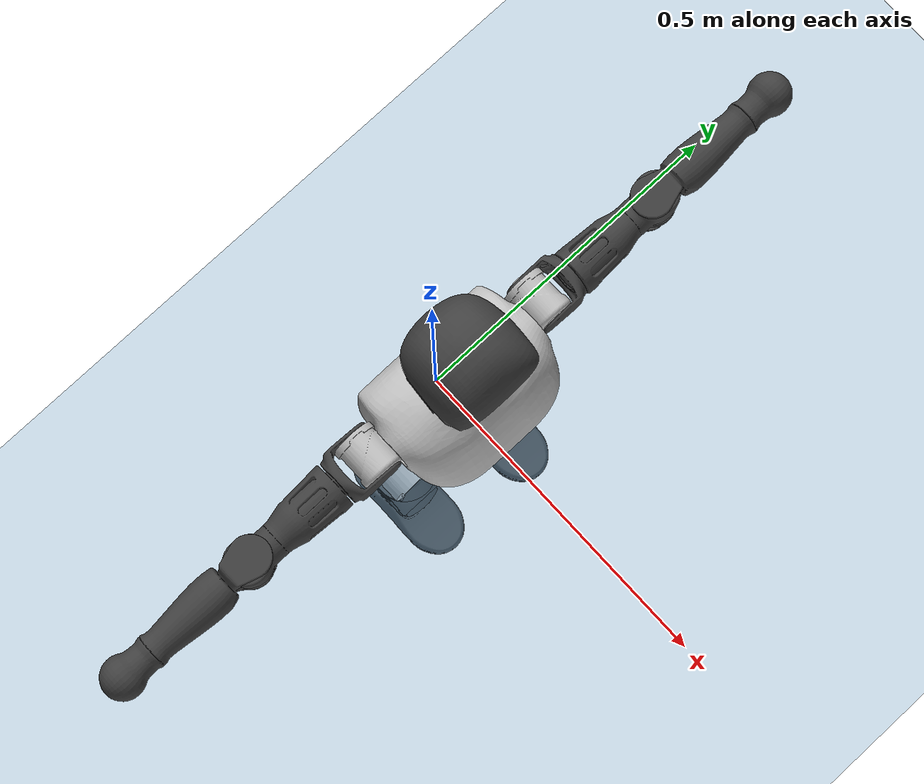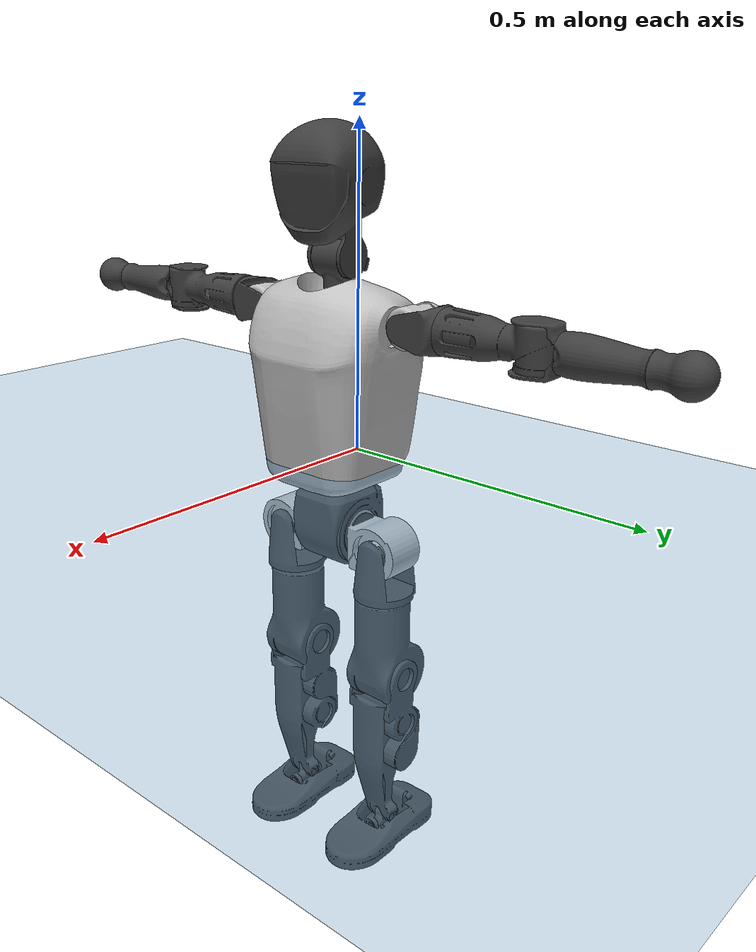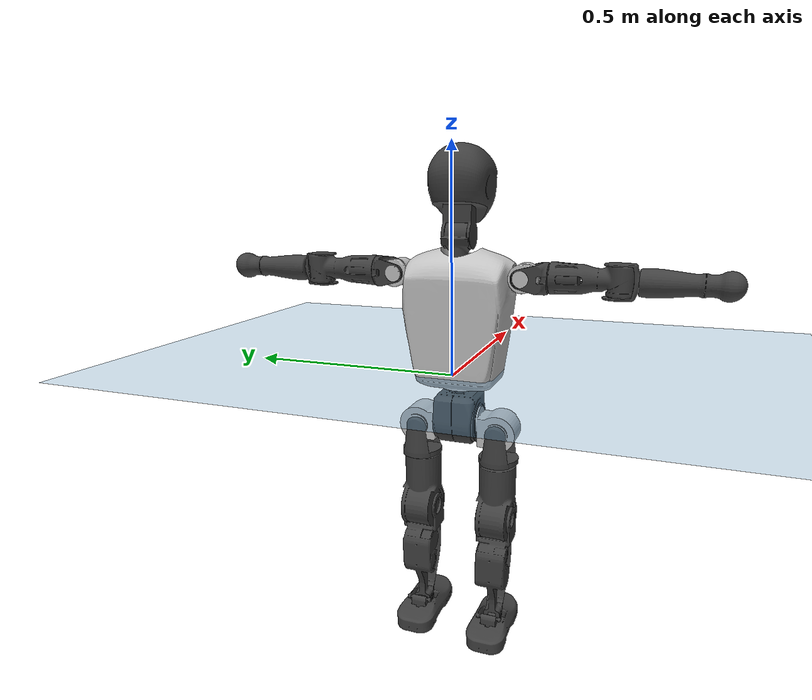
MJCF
<mujoco model="T1">
  <compiler angle="radian" assetdir="assets" balanceinertia="true" inertiafromgeom="false"/>

  <option timestep="0.005" density="1.2" viscosity="2e-05"/>

  <size nkey="1"/>

  <visual>
    <quality shadowsize="8192"/>
    <map shadowclip="0.5"/>
  </visual>

  <default>
    <default class="/">
      <joint armature="0.01" damping="0.01" frictionloss="0.1"/>
      <geom contype="0" conaffinity="0" group="1" solref="-1000 -80"/>
      <site size="0.01 0.005 0.005" group="5"/>
      <general forcelimited="true" biastype="affine" gainprm="25" biasprm="0 -25 -0.6"/>
      <default class="t1">
        <geom rgba="0.25 0.25 0.25 1"/>
        <default class="visual">
          <geom type="mesh" group="2"/>
        </default>
        <default class="collision">
          <geom group="3"/>
        </default>
        <default class="foot">
          <geom size="0.1115 0.05 0.015" type="box" condim="6" group="4" priority="1" solimp="0.015 1 0.015"/>
        </default>
        <default class="reward_collision_sphere">
          <geom group="5" rgba="1 0 0 1"/>
        </default>
      </default>
    </default>
  </default>

  <asset>
    <texture type="skybox" colorspace="auto" name="//unnamed_texture_0" builtin="gradient" rgb1="0.95 0.95 0.95" rgb2="0.95 0.95 0.95" width="100" height="600"/>
    <texture type="2d" colorspace="auto" name="texplane" builtin="checker" rgb1="0.345 0.575 0.748" rgb2="0.345 0.575 0.748" markrgb="1 1 1" width="512" height="512"/>
    <material name="MatPlane" class="/" texture="texplane" texuniform="true" texrepeat="2 2" specular="0.9"/>
    <mesh name="Trunk" class="/" file="Trunk.stl"/>
    <mesh name="H1" class="/" file="H1.stl"/>
    <mesh name="H2" class="/" file="H2.stl"/>
    <mesh name="AL1" class="/" file="AL1.stl"/>
    <mesh name="AL2" class="/" file="AL2.stl"/>
    <mesh name="AL3" class="/" file="AL3.stl"/>
    <mesh name="left_hand_link" class="/" file="left_hand_link.stl"/>
    <mesh name="AR1" class="/" file="AR1.stl"/>
    <mesh name="AR2" class="/" file="AR2.stl"/>
    <mesh name="AR3" class="/" file="AR3.stl"/>
    <mesh name="right_hand_link" class="/" file="right_hand_link.stl"/>
    <mesh name="Waist" class="/" file="Waist.stl"/>
    <mesh name="Hip_Pitch_Left" class="/" file="Hip_Pitch_Left.stl"/>
    <mesh name="Hip_Roll_Left" class="/" file="Hip_Roll_Left.stl"/>
    <mesh name="Hip_Yaw_Left" class="/" file="Hip_Yaw_Left.stl"/>
    <mesh name="Shank_Left" class="/" file="Shank_Left.stl"/>
    <mesh name="Ankle_Cross_Left" class="/" file="Ankle_Cross_Left.stl"/>
    <mesh name="left_foot_link" class="/" file="left_foot_link.stl"/>
    <mesh name="Hip_Pitch_Right" class="/" file="Hip_Pitch_Right.stl"/>
    <mesh name="Hip_Roll_Right" class="/" file="Hip_Roll_Right.stl"/>
    <mesh name="Hip_Yaw_Right" class="/" file="Hip_Yaw_Right.stl"/>
    <mesh name="Shank_Right" class="/" file="Shank_Right.stl"/>
    <mesh name="Ankle_Cross_Right" class="/" file="Ankle_Cross_Right.stl"/>
    <mesh name="right_foot_link" class="/" file="right_foot_link.stl"/>
  </asset>

  <worldbody>
    <geom name="floor" class="/" size="100 100 0.125" type="plane" group="0" material="MatPlane"/>
    <light name="toplight_shadow" class="/" pos="0 0 5" dir="0.0990148 0.0990148 -0.990148" type="directional" ambient="0.04 0.04 0.04" diffuse="0.55 0.55 0.55" specular="0.12 0.12 0.12"/>
    <light name="toplight_fill" class="/" pos="0 0 5" dir="0.0990148 0.0990148 -0.990148" type="directional" castshadow="false" ambient="0.04 0.04 0.04" diffuse="0.3 0.3 0.3" specular="0.08 0.08 0.08"/>
    <body name="trunk" childclass="t1" pos="0.000271477 -0.00249501 0.00199431" quat="0.999999 0.000993355 0.000792399 0.000196208">
      <inertial pos="0.0376744 -0.0016991 0.106001" quat="0.999953 0.00147114 -0.0096244 -0.000203405" mass="8.0161" diaginertia="0.0155271 0.0558737 0.0624795"/>
      <joint name="//unnamed_joint_0" type="free" armature="0" damping="0" frictionloss="0"/>
      <geom name="//unnamed_geom_1" class="visual" rgba="0.76 0.76 0.76 1" mesh="Trunk"/>
      <geom name="//unnamed_geom_2" class="collision" size="0.0661152 0.0881536 0.13223" pos="0.0418396 0 0.121227" type="box"/>
      <geom name="//unnamed_geom_3" class="reward_collision_sphere" size="0.101377" pos="0.0418396 0 0.101023"/>
      <geom name="//unnamed_geom_4" class="reward_collision_sphere" size="0.013223" pos="0.0418396 0.0796496 0"/>
      <geom name="//unnamed_geom_5" class="reward_collision_sphere" size="0.013223" pos="0.0418396 -0.0796496 0"/>
      <geom name="//unnamed_geom_6" class="reward_collision_sphere" size="0.013223" pos="0.0418396 0.100265 0.181841"/>
      <geom name="//unnamed_geom_7" class="reward_collision_sphere" size="0.013223" pos="0.0418396 -0.100265 0.181841"/>
      <site name="imu" pos="0.0099764 0.00476293 -0.00503641" size="0.00881536"/>
      <camera name="track" pos="0 -1.87411 0" quat="0.707107 0.707107 0 0" mode="trackcom"/>
      <camera name="ego_camera" pos="0.0850738 0 0.424295" quat="-0.5 -0.5 0.5 0.5"/>
      <body name="H1" pos="0.0453623 0.00227829 0.243335" quat="1 1.67856e-05 -6.07008e-05 -6.37522e-05">
        <inertial pos="-0.00345494 -0.00171148 0.0600224" quat="0.756508 -0.0190835 0.00456574 0.65369" mass="0.30453" diaginertia="3.91411e-05 0.000163007 0.000156426"/>
        <joint name="AAHead_yaw" pos="0 0 0" axis="-0.00390126 0.00304693 0.999988" range="-1.57065 1.52622" armature="0.00778237" damping="0.0170617" frictionloss="0.0995748"/>
        <geom name="//unnamed_geom_8" class="visual" mesh="H1"/>
        <body name="H2" pos="-0.000384002 -0.00018438 0.0637963" quat="1 -0.000170711 7.51127e-05 4.90935e-05">
          <inertial pos="0.00407044 5.40161e-05 0.0994942" quat="0.988366 0.106719 -0.0747655 -0.0784444" mass="0.419989" diaginertia="0.000323506 0.00134426 0.00181622"/>
          <joint name="Head_pitch" pos="0 0 0" axis="0.00325547 -0.999994 0.000691973" range="-1.22522 0.348575" armature="0.00757038" damping="0.00447652" frictionloss="0.0925451"/>
          <geom name="//unnamed_geom_9" class="visual" mesh="H2"/>
          <geom name="//unnamed_geom_10" class="collision" size="0.0705228" pos="0.00697326 0 0.111125"/>
          <geom name="//unnamed_geom_11" class="reward_collision_sphere" size="0.0793382" pos="0.0139465 0 0.101023"/>
        </body>
      </body>
      <body name="AL1" pos="0.040492 0.0992233 0.222069" quat="1 1.38571e-05 0.00042669 -0.000254413">
        <inertial pos="-0.00157438 0.0421449 -0.000714621" quat="0.499173 0.504243 -0.496506 0.500047" mass="0.365072" diaginertia="0.000224849 0.00093451 0.000315265"/>
        <joint name="Left_Shoulder_Pitch" pos="0 0 0" axis="-0.00643149 0.999978 0.00174182" range="-3.31655 1.21897" armature="0.0085437" damping="0.00734728" frictionloss="0.0918203"/>
        <geom name="//unnamed_geom_12" class="visual" rgba="0.76 0.76 0.76 1" mesh="AL1"/>
        <body name="AL2" pos="0.000816691 0.0449892 -0.000286104" quat="1 1.69067e-06 1.41961e-06 2.43886e-06">
          <inertial pos="0.00324529 0.0343532 -0.000561382" quat="0.488693 0.511315 -0.487578 0.511863" mass="0.111634" diaginertia="6.69772e-05 0.00024903 0.000189689"/>
          <joint name="Left_Shoulder_Roll" pos="0 0 0" axis="-0.999996 0.00163516 -0.00237808" stiffness="0.0012497" range="-1.5745 1.764" armature="0.00894324" damping="0.00381829" frictionloss="0.0897204"/>
          <geom name="//unnamed_geom_13" class="visual" mesh="AL2"/>
          <body name="AL3" pos="0.0031519 0.0576578 0.00130991" quat="0.999999 -0.000898861 0.000560751 0.00043077">
            <inertial pos="-0.00295662 0.0802841 -3.30735e-05" quat="0.708709 0.705494 -0.00295405 -0.000177446" mass="0.713093" diaginertia="0.00212996 0.00891552 0.000653297"/>
            <joint name="Left_Elbow_Pitch" pos="0 0 0" axis="0.000184915 -0.999999 -0.00108799" stiffness="0.00409443" range="-2.27279 2.26594" armature="0.00828238" damping="0.00780037" frictionloss="0.0924358"/>
            <geom name="//unnamed_geom_14" class="visual" mesh="AL3"/>
            <geom name="//unnamed_geom_15" class="collision" size="0.0264461 0.0661152" pos="0 0.0468527 0" quat="0.707105 0.707108 0 0" type="cylinder"/>
            <geom name="//unnamed_geom_16" class="reward_collision_sphere" size="0.0317353"/>
            <body name="left_hand_link" pos="-8.81948e-05 0.13791 -0.00173957" quat="0.999999 -1.11425e-05 0.000957231 -0.000848009">
              <inertial pos="-0.000608858 0.101272 0.002096" quat="0.708172 0.706029 0.00210305 0.00318134" mass="0.219515" diaginertia="0.0013385 0.00565723 0.00021173"/>
              <joint name="Left_Elbow_Yaw" pos="0 0 0" axis="-0.000273772 0.000305823 1" stiffness="0.00819872" range="-2.42803 0.00905807" armature="0.00890894" damping="0.0113751" frictionloss="0.0878401"/>
              <geom name="//unnamed_geom_17" class="visual" mesh="left_hand_link"/>
              <geom name="//unnamed_geom_18" class="collision" size="0.0264461 0.0771344" pos="0 0.121817 0" quat="0.707105 0.707108 0 0" type="cylinder"/>
              <geom name="//unnamed_geom_19" class="reward_collision_sphere" size="0.0440768"/>
              <geom name="//unnamed_geom_20" class="reward_collision_sphere" size="0.0308537" pos="0 0.103076 0"/>
              <geom name="//unnamed_geom_21" class="reward_collision_sphere" size="0.0308537" pos="0 0.201467 0"/>
            </body>
          </body>
        </body>
      </body>
      <body name="AR1" pos="0.040437 -0.10125 0.221029" quat="1 -0.000463844 0.000131715 0.000224413">
        <inertial pos="-0.000157841 -0.0448075 0.0025575" quat="0.505905 0.497007 -0.501156 0.495869" mass="0.35903" diaginertia="0.000222326 0.000893126 0.00030504"/>
        <joint name="Right_Shoulder_Pitch" pos="0 0 0" axis="0.00348822 -0.999929 -0.011377" stiffness="0.00521526" range="-1.18216 3.30193" armature="0.00855701" damping="0.00720584" frictionloss="0.0976872"/>
        <geom name="//unnamed_geom_22" class="visual" rgba="0.76 0.76 0.76 1" mesh="AR1"/>
        <body name="AR2" pos="-0.000708157 -0.0438296 0.00020278" quat="1 -0.000124196 0.000333672 -9.21774e-05">
          <inertial pos="0.00145314 -0.0352622 -0.000532328" quat="0.509916 0.48673 -0.513741 0.48903" mass="0.111731" diaginertia="6.80212e-05 0.000255949 0.000185618"/>
          <joint name="Right_Shoulder_Roll" pos="0 0 0" axis="-0.999926 -0.00190874 -0.0119926" range="-1.73548 1.56111" armature="0.00769193" damping="0.00775499" frictionloss="0.0911117"/>
          <geom name="//unnamed_geom_23" class="visual" mesh="AR2"/>
          <body name="AR3" pos="-8.49764e-05 -0.0592937 0.00215827" quat="0.999999 0.000533237 0.000641318 0.000742598">
            <inertial pos="0.00229809 -0.0797433 0.00260358" quat="0.707267 0.706946 -0.0002961 -0.000565554" mass="0.682965" diaginertia="0.00200655 0.00906091 0.000642674"/>
            <joint name="Right_Elbow_Pitch" pos="0 0 0" axis="-0.000394635 1 -0.000140326" range="-2.25088 2.26364" armature="0.00871886" damping="0.00573205" frictionloss="0.0995905"/>
            <geom name="//unnamed_geom_24" class="visual" mesh="AR3"/>
            <geom name="//unnamed_geom_25" class="collision" size="0.0264461 0.0661152" pos="0 -0.0468527 0" quat="0.707105 0.707108 0 0" type="cylinder"/>
            <geom name="//unnamed_geom_26" class="reward_collision_sphere" size="0.0317353"/>
            <body name="right_hand_link" pos="-0.00202678 -0.138853 -0.00201118" quat="1 -9.02849e-06 0.000144257 8.7088e-05">
              <inertial pos="-0.000485899 -0.103377 0.0016934" quat="0.705941 0.708268 -0.00202534 -0.000779095" mass="0.225205" diaginertia="0.00138984 0.00608234 0.000233218"/>
              <joint name="Right_Elbow_Yaw" pos="0 0 0" axis="-0.00571498 0.0095047 0.999938" range="0.0171539 2.43912" armature="0.00876123" damping="0.00582718" frictionloss="0.0922167"/>
              <geom name="//unnamed_geom_27" class="visual" mesh="right_hand_link"/>
              <geom name="//unnamed_geom_28" class="collision" size="0.0264461 0.0771344" pos="0 -0.121817 0" quat="0.707105 0.707108 0 0" type="cylinder"/>
              <geom name="//unnamed_geom_29" class="reward_collision_sphere" size="0.0440768"/>
              <geom name="//unnamed_geom_30" class="reward_collision_sphere" size="0.0308537" pos="0 -0.103076 0"/>
              <geom name="//unnamed_geom_31" class="reward_collision_sphere" size="0.0308537" pos="0 -0.201467 0"/>
            </body>
          </body>
        </body>
      </body>
      <body name="Waist" pos="0.0418893 -0.00115343 -0.117273" quat="0.999999 0.000426022 -0.00155766 0.000581465">
        <inertial pos="-0.00137839 0.00132874 0.00586437" quat="0.982353 -0.00834046 -0.186789 -0.00483143" mass="1.72992" diaginertia="0.000895464 0.00391319 0.00511372"/>
        <joint name="Waist" pos="0 0 0" axis="0.00347317 -0.00549683 0.999979" range="-1.57176 1.54753" armature="0.00871891" damping="0.0160808" frictionloss="0.0874595"/>
        <geom name="//unnamed_geom_32" class="visual" mesh="Waist"/>
        <body name="Hip_Pitch_Left" pos="0.00146369 0.0967367 0.00156779" quat="1 -0.000101056 0.0001785 -0.000161344">
          <inertial pos="0.00330936 -0.00669111 -0.0184732" quat="0.973325 0.22935 0.00566217 -0.00219988" mass="0.709023" diaginertia="0.000291881 0.00109749 0.00135179"/>
          <joint name="Left_Hip_Pitch" pos="0 0 0" axis="-0.000850741 0.999979 0.00638274" stiffness="0.0119994" range="-1.80257 1.59391" armature="0.00921819" damping="0.0118607" frictionloss="0.0903336"/>
          <geom name="//unnamed_geom_33" class="visual" rgba="0.76 0.76 0.76 1" mesh="Hip_Pitch_Left"/>
          <body name="Hip_Roll_Left" pos="-0.00167386 -0.000837143 -0.0230672" quat="1 -0.000183879 -4.54191e-05 0.000152716">
            <inertial pos="0.00097236 -0.00261109 -0.0545599" quat="0.706886 -0.00543867 -0.00610028 0.70728" mass="0.258695" diaginertia="0.000271725 0.00103516 0.000546515"/>
            <joint name="Left_Hip_Roll" pos="0 0 0" axis="-1 -0.000255129 0.000302314" stiffness="0.000525205" range="-1.54765 0.215802" armature="0.00832695" damping="0.000256238" frictionloss="0.0974898"/>
            <geom name="//unnamed_geom_34" class="visual" mesh="Hip_Roll_Left"/>
            <geom name="//unnamed_geom_35" class="reward_collision_sphere" size="0.0484845"/>
            <body name="Hip_Yaw_Left" pos="0.000780988 -0.00144832 -0.0818708" quat="1 0.000179366 0.000574658 5.02305e-05">
              <inertial pos="-0.00546469 -0.00130914 -0.0922171" quat="0.695908 -0.0318755 -0.0291379 0.716831" mass="1.46492" diaginertia="0.00413554 0.0176355 0.00263027"/>
              <joint name="Left_Hip_Yaw" pos="0 0 0" axis="0.00262351 -0.00127716 -0.999996" range="-1.05747 1.01917" armature="0.00898464" damping="0.00581341" frictionloss="0.0868062"/>
              <geom name="//unnamed_geom_36" class="visual" mesh="Hip_Yaw_Left"/>
              <geom name="//unnamed_geom_37" class="collision" size="0.0440768 0.0705228" type="cylinder"/>
              <body name="Shank_Left" pos="-0.00973074 0.000134953 -0.1372" quat="1 0.000106553 8.54813e-05 -0.000259159">
                <inertial pos="-0.00626023 0.000719082 -0.125548" quat="0.997904 0.00285841 -0.0217455 0.0608863" mass="1.16478" diaginertia="0.00575999 0.0238007 0.0018756"/>
                <joint name="Left_Knee_Pitch" pos="0 0 0" axis="0.00284769 0.999996 0.000582439" range="0.00155779 2.31185" armature="0.00967518" damping="0" frictionloss="0.0862231"/>
                <geom name="//unnamed_geom_38" class="visual" mesh="Shank_Left"/>
                <geom name="//unnamed_geom_39" class="collision" size="0.0440768 0.0661152" pos="0 0 -0.121227" type="cylinder"/>
                <geom name="//unnamed_geom_40" class="reward_collision_sphere" size="0.0572998"/>
                <body name="Ankle_Cross_Left" pos="0.00259915 -0.000156312 -0.282101" quat="1 -9.22155e-06 0.000335622 -2.60203e-05">
                  <inertial pos="-0.00512782 -0.00120391 -0.00730668" quat="0.442797 0.552033 0.549003 0.444731" mass="0.049558" diaginertia="4.70762e-06 1.85115e-05 1.18672e-05"/>
                  <joint name="Left_Ankle_Pitch" pos="0 0 0" axis="-6.18098e-05 1 -8.61925e-06" range="-0.866929 0.344466" armature="0.00992653" damping="0.0217888" frictionloss="0.0902507"/>
                  <geom name="//unnamed_geom_41" class="visual" mesh="Ankle_Cross_Left"/>
                  <body name="left_foot_link" pos="-0.000340394 -0.00231109 -0.010495" quat="0.999999 0.000906696 -7.29391e-05 0.000897269">
                    <inertial pos="-0.002255 -0.000695556 -0.00838545" quat="0.00350422 0.622755 0.0123826 0.782311" mass="0.488253" diaginertia="0.000456452 0.00172375 0.00235259"/>
                    <joint name="Left_Ankle_Roll" pos="0 0 0" axis="-0.999901 -0.00193639 0.0139135" range="-0.455685 0.470752" armature="0.00871106" damping="0" frictionloss="0.0928577"/>
                    <geom name="//unnamed_geom_42" class="visual" mesh="left_foot_link"/>
                    <geom name="left_foot" class="foot" size="0.108821 0.0396591 0.0141631" pos="0.00697326 0 -0.0151534"/>
                    <geom name="//unnamed_geom_44" class="reward_collision_sphere" size="0.0458398" pos="0.00697326 0 -0.0151534"/>
                    <geom name="//unnamed_geom_45" class="reward_collision_sphere" size="0.0264461" pos="0.066246 -0.0215522 -0.0151534"/>
                    <geom name="//unnamed_geom_46" class="reward_collision_sphere" size="0.0264461" pos="-0.0488128 -0.0215522 -0.0151534"/>
                    <site name="left_foot" class="foot" pos="0.00697326 0 -0.0151534" size="0.00881536"/>
                  </body>
                </body>
              </body>
            </body>
          </body>
        </body>
        <body name="Hip_Pitch_Right" pos="0.000446553 -0.100125 -0.000630442" quat="1 -0.000139221 3.85853e-05 0.000268799">
          <inertial pos="-0.00241985 0.00450419 -0.0174991" quat="0.973705 -0.227348 0.012123 -0.00805014" mass="0.697186" diaginertia="0.000304894 0.0010824 0.00130424"/>
          <joint name="Right_Hip_Pitch" pos="0 0 0" axis="0.00233293 -0.999989 0.00409516" range="-1.54981 1.76835" armature="0.00898959" damping="0" frictionloss="0.0872847"/>
          <geom name="//unnamed_geom_47" class="visual" rgba="0.76 0.76 0.76 1" mesh="Hip_Pitch_Right"/>
          <body name="Hip_Roll_Right" pos="-0.00249077 7.58757e-05 -0.0210489" quat="1 0.000497837 -0.000562937 7.30852e-05">
            <inertial pos="-0.000610007 -0.000952511 -0.0523154" quat="0.710003 -0.00403672 -0.0174162 0.703971" mass="0.265682" diaginertia="0.000299636 0.0011181 0.000542599"/>
            <joint name="Right_Hip_Roll" pos="0 0 0" axis="-0.999985 0.00539489 -0.000805547" range="-0.183645 1.57908" armature="0.00844604" damping="0.00414356" frictionloss="0.0957007"/>
            <geom name="//unnamed_geom_48" class="visual" mesh="Hip_Roll_Right"/>
            <geom name="//unnamed_geom_49" class="reward_collision_sphere" size="0.0484845"/>
            <body name="Hip_Yaw_Right" pos="-0.00164245 0.000844768 -0.0855262" quat="1 0.000100439 0.000540707 3.54013e-05">
              <inertial pos="-0.00439443 0.000231366 -0.0890289" quat="0.712974 -0.0301068 -0.0339188 0.699722" mass="1.48035" diaginertia="0.00439634 0.0185607 0.00282361"/>
              <joint name="Right_Hip_Yaw" pos="0 0 0" axis="-0.00166108 -0.000499508 -0.999998" range="-1.00855 1.00363" armature="0.00846326" damping="0.022011" frictionloss="0.0908529"/>
              <geom name="//unnamed_geom_50" class="visual" mesh="Hip_Yaw_Right"/>
              <geom name="//unnamed_geom_51" class="collision" size="0.0440768 0.0705228" type="cylinder"/>
              <body name="Shank_Right" pos="-0.0115988 0.00012031 -0.137744" quat="1 -0.000204287 -3.27677e-05 6.5086e-05">
                <inertial pos="-0.003787 -0.00260925 -0.123466" quat="0.998996 0.00739068 -0.0251158 -0.0363454" mass="1.25585" diaginertia="0.00579125 0.0250847 0.00198784"/>
                <joint name="Right_Knee_Pitch" pos="0 0 0" axis="-0.00910555 -0.999955 -0.00262881" stiffness="0.00042292" range="-2.39305 0.00608298" armature="0.0092822" damping="0.0105056" frictionloss="0.0911381"/>
                <geom name="//unnamed_geom_52" class="visual" mesh="Shank_Right"/>
                <geom name="//unnamed_geom_53" class="collision" size="0.0440768 0.0661152" pos="0 0 -0.121227" type="cylinder"/>
                <geom name="//unnamed_geom_54" class="reward_collision_sphere" size="0.0572998"/>
                <body name="Ankle_Cross_Right" pos="-0.000733228 -0.00161156 -0.285113" quat="1 0.000104873 1.93296e-05 1.811e-05">
                  <inertial pos="-0.00336833 0.0011328 -0.00797618" quat="0.443255 0.551125 0.55061 0.443411" mass="0.0495554" diaginertia="4.97116e-06 1.83282e-05 1.24056e-05"/>
                  <joint name="Right_Ankle_Pitch" pos="0 0 0" axis="0.00355505 -0.99993 0.0112549" range="-0.323514 0.827871" armature="0.00872939" damping="0.011774" frictionloss="0.0867068"/>
                  <geom name="//unnamed_geom_55" class="visual" mesh="Ankle_Cross_Right"/>
                  <body name="right_foot_link" pos="0.000695817 0.00133829 -0.0117885" quat="1 1.52601e-05 -1.11837e-05 -2.25997e-05">
                    <inertial pos="-7.83417e-05 0.00230862 -0.011853" quat="-0.00347706 0.624859 -0.010618 0.780658" mass="0.452938" diaginertia="0.000428621 0.00166063 0.00215268"/>
                    <joint name="Right_Ankle_Roll" pos="0 0 0" axis="-0.999993 0.00290887 0.00238789" range="-0.484538 0.49298" armature="0.00767628" damping="0" frictionloss="0.0962539"/>
                    <geom name="//unnamed_geom_56" class="visual" mesh="right_foot_link"/>
                    <geom name="right_foot" class="foot" size="0.0976859 0.0401587 0.0143017" pos="0.00697326 0 -0.0151534"/>
                    <geom name="//unnamed_geom_58" class="reward_collision_sphere" size="0.0352614"/>
                    <geom name="//unnamed_geom_59" class="reward_collision_sphere" size="0.0264461" pos="0.00697326 0 -0.0151534"/>
                    <geom name="//unnamed_geom_60" class="reward_collision_sphere" size="0.0264461" pos="0.066246 0.0215522 -0.0151534"/>
                    <geom name="//unnamed_geom_61" class="reward_collision_sphere" size="0.0264461" pos="-0.0488128 0.0215522 -0.0151534"/>
                    <site name="right_foot" class="foot" pos="0.00697326 0 -0.0151534" size="0.00881536"/>
                  </body>
                </body>
              </body>
            </body>
          </body>
        </body>
      </body>
    </body>
  </worldbody>

  <contact>
    <pair class="/" geom1="floor" geom2="left_foot" name="//unnamed_contact_0"/>
    <pair class="/" geom1="floor" geom2="right_foot" name="//unnamed_contact_1"/>
  </contact>

  <actuator>
    <general name="AAHead_yaw" class="/" joint="AAHead_yaw" forcerange="-6.242 6.242" gainprm="21.9292" biasprm="0 -21.9292 -0.528751"/>
    <general name="Head_pitch" class="/" joint="Head_pitch" forcerange="-6.28945 6.28945" gainprm="21.9292" biasprm="0 -21.9292 -0.528751"/>
    <general name="Left_Shoulder_Pitch" class="/" joint="Left_Shoulder_Pitch" forcerange="-14.26 14.26" gainprm="21.9292" biasprm="0 -21.9292 -0.528751"/>
    <general name="Left_Shoulder_Roll" class="/" joint="Left_Shoulder_Roll" forcerange="-14.2706 14.2706" gainprm="21.9292" biasprm="0 -21.9292 -0.528751"/>
    <general name="Left_Elbow_Pitch" class="/" joint="Left_Elbow_Pitch" forcerange="-16.8737 16.8737" gainprm="21.9292" biasprm="0 -21.9292 -0.528751"/>
    <general name="Left_Elbow_Yaw" class="/" joint="Left_Elbow_Yaw" forcerange="-15.9601 15.9601" gainprm="21.9292" biasprm="0 -21.9292 -0.528751"/>
    <general name="Right_Shoulder_Pitch" class="/" joint="Right_Shoulder_Pitch" forcerange="-16.4818 16.4818" gainprm="21.9292" biasprm="0 -21.9292 -0.528751"/>
    <general name="Right_Shoulder_Roll" class="/" joint="Right_Shoulder_Roll" forcerange="-16.9815 16.9815" gainprm="21.9292" biasprm="0 -21.9292 -0.528751"/>
    <general name="Right_Elbow_Pitch" class="/" joint="Right_Elbow_Pitch" forcerange="-15.2932 15.2932" gainprm="21.9292" biasprm="0 -21.9292 -0.528751"/>
    <general name="Right_Elbow_Yaw" class="/" joint="Right_Elbow_Yaw" forcerange="-16.3891 16.3891" gainprm="21.9292" biasprm="0 -21.9292 -0.528751"/>
    <general name="Waist" class="/" joint="Waist" forcerange="-24.2661 24.2661" gainprm="21.9292" biasprm="0 -21.9292 -0.528751"/>
    <general name="Left_Hip_Pitch" class="/" joint="Left_Hip_Pitch" forcerange="-38.8656 38.8656" gainprm="21.9292" biasprm="0 -21.9292 -0.528751"/>
    <general name="Left_Hip_Roll" class="/" joint="Left_Hip_Roll" forcerange="-26.0712 26.0712" gainprm="21.9292" biasprm="0 -21.9292 -0.528751"/>
    <general name="Left_Hip_Yaw" class="/" joint="Left_Hip_Yaw" forcerange="-25.4837 25.4837" gainprm="21.9292" biasprm="0 -21.9292 -0.528751"/>
    <general name="Left_Knee_Pitch" class="/" joint="Left_Knee_Pitch" forcerange="-52.0231 52.0231" gainprm="21.9292" biasprm="0 -21.9292 -0.528751"/>
    <general name="Left_Ankle_Pitch" class="/" joint="Left_Ankle_Pitch" forcerange="-17.7108 17.7108" gainprm="21.9292" biasprm="0 -21.9292 -0.528751"/>
    <general name="Left_Ankle_Roll" class="/" joint="Left_Ankle_Roll" forcerange="-12.8754 12.8754" gainprm="21.9292" biasprm="0 -21.9292 -0.528751"/>
    <general name="Right_Hip_Pitch" class="/" joint="Right_Hip_Pitch" forcerange="-43.5243 43.5243" gainprm="21.9292" biasprm="0 -21.9292 -0.528751"/>
    <general name="Right_Hip_Roll" class="/" joint="Right_Hip_Roll" forcerange="-29.0214 29.0214" gainprm="21.9292" biasprm="0 -21.9292 -0.528751"/>
    <general name="Right_Hip_Yaw" class="/" joint="Right_Hip_Yaw" forcerange="-26.663 26.663" gainprm="21.9292" biasprm="0 -21.9292 -0.528751"/>
    <general name="Right_Knee_Pitch" class="/" joint="Right_Knee_Pitch" forcerange="-54.1295 54.1295" gainprm="21.9292" biasprm="0 -21.9292 -0.528751"/>
    <general name="Right_Ankle_Pitch" class="/" joint="Right_Ankle_Pitch" forcerange="-15.8876 15.8876" gainprm="21.9292" biasprm="0 -21.9292 -0.528751"/>
    <general name="Right_Ankle_Roll" class="/" joint="Right_Ankle_Roll" forcerange="-14.3515 14.3515" gainprm="21.9292" biasprm="0 -21.9292 -0.528751"/>
  </actuator>

  <sensor>
    <gyro site="imu" name="imu_angular_velocity"/>
    <velocimeter site="imu" name="imu_linear_velocity"/>
    <framelinvel objtype="site" objname="left_foot" name="left_foot_global_linear_velocity"/>
    <framelinvel objtype="site" objname="right_foot" name="right_foot_global_linear_velocity"/>
  </sensor>

  <keyframe>
    <key name="home" qpos="0 0 0.6385 1 0 0 0 0 0 0 1.4 0 -0.4 0 -1.4 0 0.4 0 -0.4 0 0 0.8 -0.4 0 0.4 0 0 -0.8 0.4 0"/>
  </keyframe>
</mujoco>
